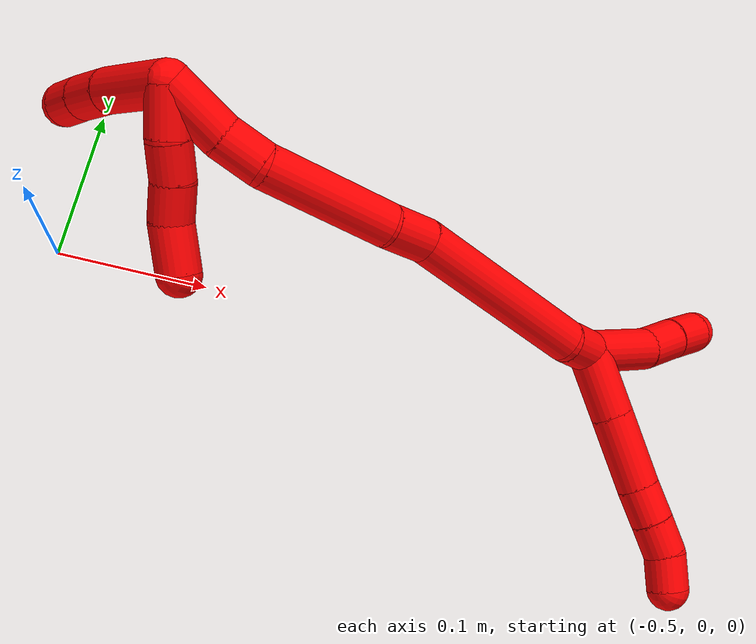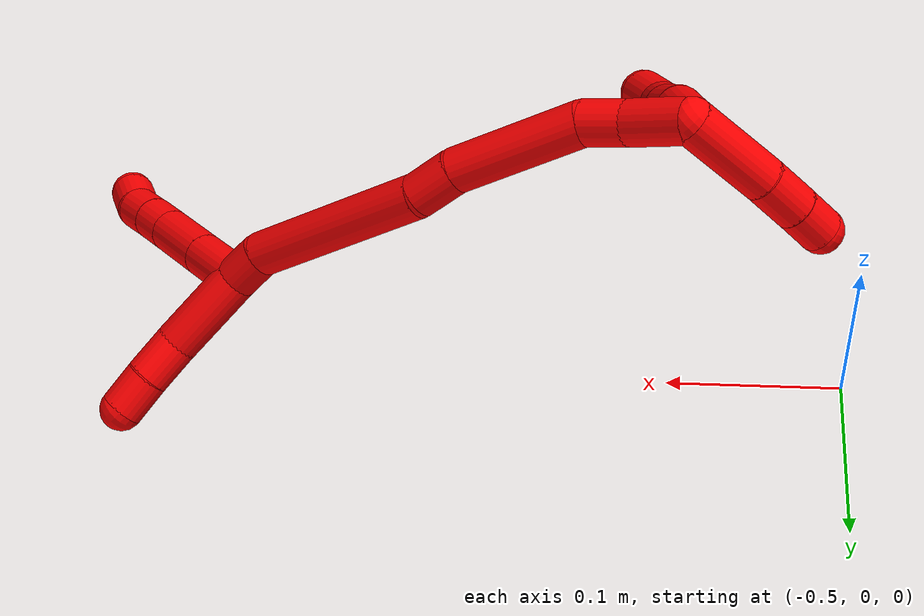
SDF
<sdf version="1.7">
 <world name="default">
  <model name="photoneo_s_sensor">
   <static>1</static>
   <pose>0 0 2 1.57079 1.57079 3.14159</pose>
   <link name="link">
    <inertial><mass>0.1</mass></inertial>
    <sensor name="sensor" type="depth">
     <update_rate>30</update_rate>
     <camera>
      <horizontal_fov>1.22</horizontal_fov>
      <image><width>1920</width><height>1200</height><format>B8G8R8</format></image>
      <clip><near>0.1</near><far>4</far></clip>
      <depth_camera><output>points</output></depth_camera>
     </camera>
     <plugin name="camera_plugin" filename="libgazebo_ros_depth_camera.so">
      <baseline>0.2</baseline>
      <alwaysOn>1</alwaysOn>
      <updateRate>0.0</updateRate>
      <cameraName>camera_ir</cameraName>
      <imageTopicName>/camera/color/image_raw</imageTopicName>
      <cameraInfoTopicName>/camera/color/camera_info</cameraInfoTopicName>
      <depthImageTopicName>/camera/depth/image_raw</depthImageTopicName>
      <depthImageCameraInfoTopicName>/camera/depth/camera_info</depthImageCameraInfoTopicName>
      <pointCloudTopicName>/camera/depth/points</pointCloudTopicName>
      <frameName>fr_optical</frameName>
      <pointCloudCutoff>0.1</pointCloudCutoff>
      <pointCloudCutoffMax>2.0</pointCloudCutoffMax>
      <distortionK1>0</distortionK1>
      <distortionK2>0</distortionK2>
      <distortionK3>0</distortionK3>
      <distortionT1>0</distortionT1>
      <distortionT2>0</distortionT2>
      <CxPrime>0</CxPrime>
      <Cx>0</Cx>
      <Cy>0</Cy>
      <focalLength>0</focalLength>
      <hackBaseline>0</hackBaseline>
     </plugin>
    </sensor>
   </link>
  </model>
  <model name="bin">
   <static>1</static>
   <link name="bottom">
    <collision name="collision-bottom">
     <pose>0 0 -0.01 0 -0 0</pose>
     <geometry><box><size>0.8 0.6 0.02</size></box></geometry>
     <surface>
      <friction><ode><mu>100</mu><mu2>100</mu2></ode></friction>
      <contact><collide_bitmask>65535</collide_bitmask></contact>
     </surface>
    </collision>
   </link>
   <link name="west_wall">
    <collision name="collision-west_wall">
     <pose>-0.41 0 0.1 0 -0 0</pose>
     <geometry><box><size>0.02 0.6 0.2</size></box></geometry>
     <surface>
      <friction><ode><mu>100</mu><mu2>100</mu2></ode></friction>
      <contact><collide_bitmask>65535</collide_bitmask></contact>
     </surface>
    </collision>
   </link>
   <link name="east_wall">
    <collision name="collision-east_wall">
     <pose>0.41 0 0.1 0 -0 0</pose>
     <geometry><box><size>0.02 0.6 0.2</size></box></geometry>
     <surface>
      <friction><ode><mu>100</mu><mu2>100</mu2></ode></friction>
      <contact><collide_bitmask>65535</collide_bitmask></contact>
     </surface>
    </collision>
   </link>
   <link name="south_wall">
    <collision name="collision-south_wall">
     <pose>0 -0.31 0.1 0 -0 0</pose>
     <geometry><box><size>0.8 0.02 0.2</size></box></geometry>
     <surface>
      <friction><ode><mu>100</mu><mu2>100</mu2></ode></friction>
      <contact><collide_bitmask>65535</collide_bitmask></contact>
     </surface>
    </collision>
   </link>
   <link name="north_wall">
    <collision name="collision-north_wall">
     <pose>0 0.31 0.1 0 -0 0</pose>
     <geometry><box><size>0.8 0.02 0.2</size></box></geometry>
     <surface>
      <friction><ode><mu>100</mu><mu2>100</mu2></ode></friction>
      <contact><collide_bitmask>65535</collide_bitmask></contact>
     </surface>
    </collision>
   </link>
  </model>
  <model name="2">
   <static>0</static>
   <link name="2">
    <collision name="collision-cylinder-e_1_2_8">
     <pose>0.009675 -0.014871 -0.009185 2.1241 0.50552 0.867405</pose>
     <geometry><cylinder><radius>0.0125</radius><length>0.039956</length></cylinder></geometry>
     <surface>
      <friction><ode><mu>1.16</mu><mu2>1.16</mu2><slip1>0</slip1><slip2>0</slip2></ode></friction>
      <contact><ode><kp>1e+06</kp><kd>1</kd><max_vel>0</max_vel><min_depth>0.001</min_depth></ode></contact>
     </surface>
    </collision>
    <visual name="visual-cylinder-e_1_2_8">
     <pose>0.009675 -0.014871 -0.009185 2.1241 0.50552 0.867405</pose>
     <geometry><cylinder><radius>0.0125</radius><length>0.039956</length></cylinder></geometry>
     <material><ambient>1 0 0 1</ambient></material>
    </visual>
    <collision name="collision-cylinder-e_2_8_9">
     <pose>0.030264 -0.046567 -0.028665 2.11989 0.505426 0.863497</pose>
     <geometry><cylinder><radius>0.0125</radius><length>0.045086</length></cylinder></geometry>
     <surface>
      <friction><ode><mu>1.16</mu><mu2>1.16</mu2><slip1>0</slip1><slip2>0</slip2></ode></friction>
      <contact><ode><kp>1e+06</kp><kd>1</kd><max_vel>0</max_vel><min_depth>0.001</min_depth></ode></contact>
     </surface>
    </collision>
    <visual name="visual-cylinder-e_2_8_9">
     <pose>0.030264 -0.046567 -0.028665 2.11989 0.505426 0.863497</pose>
     <geometry><cylinder><radius>0.0125</radius><length>0.045086</length></cylinder></geometry>
     <material><ambient>1 0 0 1</ambient></material>
    </visual>
    <collision name="collision-cylinder-e_3_9_10">
     <pose>0.046957 -0.071424 -0.044038 2.13464 0.546286 0.940991</pose>
     <geometry><cylinder><radius>0.0125</radius><length>0.022242</length></cylinder></geometry>
     <surface>
      <friction><ode><mu>1.16</mu><mu2>1.16</mu2><slip1>0</slip1><slip2>0</slip2></ode></friction>
      <contact><ode><kp>1e+06</kp><kd>1</kd><max_vel>0</max_vel><min_depth>0.001</min_depth></ode></contact>
     </surface>
    </collision>
    <visual name="visual-cylinder-e_3_9_10">
     <pose>0.046957 -0.071424 -0.044038 2.13464 0.546286 0.940991</pose>
     <geometry><cylinder><radius>0.0125</radius><length>0.022242</length></cylinder></geometry>
     <material><ambient>1 0 0 1</ambient></material>
    </visual>
    <collision name="collision-cylinder-e_4_10_11">
     <pose>0.057978 -0.08731 -0.054242 2.14893 0.509791 0.896898</pose>
     <geometry><cylinder><radius>0.0125</radius><length>0.021489</length></cylinder></geometry>
     <surface>
      <friction><ode><mu>1.16</mu><mu2>1.16</mu2><slip1>0</slip1><slip2>0</slip2></ode></friction>
      <contact><ode><kp>1e+06</kp><kd>1</kd><max_vel>0</max_vel><min_depth>0.001</min_depth></ode></contact>
     </surface>
    </collision>
    <visual name="visual-cylinder-e_4_10_11">
     <pose>0.057978 -0.08731 -0.054242 2.14893 0.509791 0.896898</pose>
     <geometry><cylinder><radius>0.0125</radius><length>0.021489</length></cylinder></geometry>
     <material><ambient>1 0 0 1</ambient></material>
    </visual>
    <collision name="collision-cylinder-e_5_11_6">
     <pose>0.067435 -0.104579 -0.061863 1.83003 0.408292 0.525729</pose>
     <geometry><cylinder><radius>0.0125</radius><length>0.021226</length></cylinder></geometry>
     <surface>
      <friction><ode><mu>1.16</mu><mu2>1.16</mu2><slip1>0</slip1><slip2>0</slip2></ode></friction>
      <contact><ode><kp>1e+06</kp><kd>1</kd><max_vel>0</max_vel><min_depth>0.001</min_depth></ode></contact>
     </surface>
    </collision>
    <visual name="visual-cylinder-e_5_11_6">
     <pose>0.067435 -0.104579 -0.061863 1.83003 0.408292 0.525729</pose>
     <geometry><cylinder><radius>0.0125</radius><length>0.021226</length></cylinder></geometry>
     <material><ambient>1 0 0 1</ambient></material>
    </visual>
    <collision name="collision-cylinder-e_1_2_12">
     <pose>-0.001113 0.004694 -0.02511 -2.9568 -0.043525 0.461436</pose>
     <geometry><cylinder><radius>0.0125</radius><length>0.051139</length></cylinder></geometry>
     <surface>
      <friction><ode><mu>1.16</mu><mu2>1.16</mu2><slip1>0</slip1><slip2>0</slip2></ode></friction>
      <contact><ode><kp>1e+06</kp><kd>1</kd><max_vel>0</max_vel><min_depth>0.001</min_depth></ode></contact>
     </surface>
    </collision>
    <visual name="visual-cylinder-e_1_2_12">
     <pose>-0.001113 0.004694 -0.02511 -2.9568 -0.043525 0.461436</pose>
     <geometry><cylinder><radius>0.0125</radius><length>0.051139</length></cylinder></geometry>
     <material><ambient>1 0 0 1</ambient></material>
    </visual>
    <collision name="collision-cylinder-e_2_12_13">
     <pose>-0.003024 0.014377 -0.061928 -2.7387 -0.062656 0.304542</pose>
     <geometry><cylinder><radius>0.0125</radius><length>0.025502</length></cylinder></geometry>
     <surface>
      <friction><ode><mu>1.16</mu><mu2>1.16</mu2><slip1>0</slip1><slip2>0</slip2></ode></friction>
      <contact><ode><kp>1e+06</kp><kd>1</kd><max_vel>0</max_vel><min_depth>0.001</min_depth></ode></contact>
     </surface>
    </collision>
    <visual name="visual-cylinder-e_2_12_13">
     <pose>-0.003024 0.014377 -0.061928 -2.7387 -0.062656 0.304542</pose>
     <geometry><cylinder><radius>0.0125</radius><length>0.025502</length></cylinder></geometry>
     <material><ambient>1 0 0 1</ambient></material>
    </visual>
    <collision name="collision-cylinder-e_3_13_5">
     <pose>-0.005059 0.023087 -0.084636 -2.81549 -0.106078 0.624302</pose>
     <geometry><cylinder><radius>0.0125</radius><length>0.023359</length></cylinder></geometry>
     <surface>
      <friction><ode><mu>1.16</mu><mu2>1.16</mu2><slip1>0</slip1><slip2>0</slip2></ode></friction>
      <contact><ode><kp>1e+06</kp><kd>1</kd><max_vel>0</max_vel><min_depth>0.001</min_depth></ode></contact>
     </surface>
    </collision>
    <visual name="visual-cylinder-e_3_13_5">
     <pose>-0.005059 0.023087 -0.084636 -2.81549 -0.106078 0.624302</pose>
     <geometry><cylinder><radius>0.0125</radius><length>0.023359</length></cylinder></geometry>
     <material><ambient>1 0 0 1</ambient></material>
    </visual>
    <collision name="collision-cylinder-e_1_2_14">
     <pose>9.8e-05 0.00142 0.011506 -0.122771 0.008446 -0.000519</pose>
     <geometry><cylinder><radius>0.0125</radius><length>0.023187</length></cylinder></geometry>
     <surface>
      <friction><ode><mu>1.16</mu><mu2>1.16</mu2><slip1>0</slip1><slip2>0</slip2></ode></friction>
      <contact><ode><kp>1e+06</kp><kd>1</kd><max_vel>0</max_vel><min_depth>0.001</min_depth></ode></contact>
     </surface>
    </collision>
    <visual name="visual-cylinder-e_1_2_14">
     <pose>9.8e-05 0.00142 0.011506 -0.122771 0.008446 -0.000519</pose>
     <geometry><cylinder><radius>0.0125</radius><length>0.023187</length></cylinder></geometry>
     <material><ambient>1 0 0 1</ambient></material>
    </visual>
    <collision name="collision-cylinder-e_2_14_15">
     <pose>-0.016163 0.017049 0.074164 -0.270954 -0.298914 0.041046</pose>
     <geometry><cylinder><radius>0.0125</radius><length>0.111105</length></cylinder></geometry>
     <surface>
      <friction><ode><mu>1.16</mu><mu2>1.16</mu2><slip1>0</slip1><slip2>0</slip2></ode></friction>
      <contact><ode><kp>1e+06</kp><kd>1</kd><max_vel>0</max_vel><min_depth>0.001</min_depth></ode></contact>
     </surface>
    </collision>
    <visual name="visual-cylinder-e_2_14_15">
     <pose>-0.016163 0.017049 0.074164 -0.270954 -0.298914 0.041046</pose>
     <geometry><cylinder><radius>0.0125</radius><length>0.111105</length></cylinder></geometry>
     <material><ambient>1 0 0 1</ambient></material>
    </visual>
    <collision name="collision-cylinder-e_3_15_16">
     <pose>-0.034434 0.032108 0.138259 -0.065552 -0.146315 0.004806</pose>
     <geometry><cylinder><radius>0.0125</radius><length>0.02622</length></cylinder></geometry>
     <surface>
      <friction><ode><mu>1.16</mu><mu2>1.16</mu2><slip1>0</slip1><slip2>0</slip2></ode></friction>
      <contact><ode><kp>1e+06</kp><kd>1</kd><max_vel>0</max_vel><min_depth>0.001</min_depth></ode></contact>
     </surface>
    </collision>
    <visual name="visual-cylinder-e_3_15_16">
     <pose>-0.034434 0.032108 0.138259 -0.065552 -0.146315 0.004806</pose>
     <geometry><cylinder><radius>0.0125</radius><length>0.02622</length></cylinder></geometry>
     <material><ambient>1 0 0 1</ambient></material>
    </visual>
    <collision name="collision-cylinder-e_4_16_17">
     <pose>-0.049467 0.037042 0.186949 -0.113756 -0.349679 0.020115</pose>
     <geometry><cylinder><radius>0.0125</radius><length>0.076598</length></cylinder></geometry>
     <surface>
      <friction><ode><mu>1.16</mu><mu2>1.16</mu2><slip1>0</slip1><slip2>0</slip2></ode></friction>
      <contact><ode><kp>1e+06</kp><kd>1</kd><max_vel>0</max_vel><min_depth>0.001</min_depth></ode></contact>
     </surface>
    </collision>
    <visual name="visual-cylinder-e_4_16_17">
     <pose>-0.049467 0.037042 0.186949 -0.113756 -0.349679 0.020115</pose>
     <geometry><cylinder><radius>0.0125</radius><length>0.076598</length></cylinder></geometry>
     <material><ambient>1 0 0 1</ambient></material>
    </visual>
    <collision name="collision-cylinder-e_5_17_18">
     <pose>-0.070041 0.044304 0.23236 -0.317794 -0.632403 0.104764</pose>
     <geometry><cylinder><radius>0.0125</radius><length>0.025219</length></cylinder></geometry>
     <surface>
      <friction><ode><mu>1.16</mu><mu2>1.16</mu2><slip1>0</slip1><slip2>0</slip2></ode></friction>
      <contact><ode><kp>1e+06</kp><kd>1</kd><max_vel>0</max_vel><min_depth>0.001</min_depth></ode></contact>
     </surface>
    </collision>
    <visual name="visual-cylinder-e_5_17_18">
     <pose>-0.070041 0.044304 0.23236 -0.317794 -0.632403 0.104764</pose>
     <geometry><cylinder><radius>0.0125</radius><length>0.025219</length></cylinder></geometry>
     <material><ambient>1 0 0 1</ambient></material>
    </visual>
    <collision name="collision-cylinder-e_6_18_1">
     <pose>-0.086555 0.055364 0.256532 -0.497558 -0.50182 0.130044</pose>
     <geometry><cylinder><radius>0.0125</radius><length>0.03767</length></cylinder></geometry>
     <surface>
      <friction><ode><mu>1.16</mu><mu2>1.16</mu2><slip1>0</slip1><slip2>0</slip2></ode></friction>
      <contact><ode><kp>1e+06</kp><kd>1</kd><max_vel>0</max_vel><min_depth>0.001</min_depth></ode></contact>
     </surface>
    </collision>
    <visual name="visual-cylinder-e_6_18_1">
     <pose>-0.086555 0.055364 0.256532 -0.497558 -0.50182 0.130044</pose>
     <geometry><cylinder><radius>0.0125</radius><length>0.03767</length></cylinder></geometry>
     <material><ambient>1 0 0 1</ambient></material>
    </visual>
    <collision name="collision-cylinder-e_1_1_19">
     <pose>-0.120625 0.054726 0.271149 1.55835 -1.24247 -1.23072</pose>
     <geometry><cylinder><radius>0.0125</radius><length>0.052844</length></cylinder></geometry>
     <surface>
      <friction><ode><mu>1.16</mu><mu2>1.16</mu2><slip1>0</slip1><slip2>0</slip2></ode></friction>
      <contact><ode><kp>1e+06</kp><kd>1</kd><max_vel>0</max_vel><min_depth>0.001</min_depth></ode></contact>
     </surface>
    </collision>
    <visual name="visual-cylinder-e_1_1_19">
     <pose>-0.120625 0.054726 0.271149 1.55835 -1.24247 -1.23072</pose>
     <geometry><cylinder><radius>0.0125</radius><length>0.052844</length></cylinder></geometry>
     <material><ambient>1 0 0 1</ambient></material>
    </visual>
    <collision name="collision-cylinder-e_2_19_20">
     <pose>-0.157645 0.041325 0.270567 1.71093 -1.18129 -1.31449</pose>
     <geometry><cylinder><radius>0.0125</radius><length>0.025963</length></cylinder></geometry>
     <surface>
      <friction><ode><mu>1.16</mu><mu2>1.16</mu2><slip1>0</slip1><slip2>0</slip2></ode></friction>
      <contact><ode><kp>1e+06</kp><kd>1</kd><max_vel>0</max_vel><min_depth>0.001</min_depth></ode></contact>
     </surface>
    </collision>
    <visual name="visual-cylinder-e_2_19_20">
     <pose>-0.157645 0.041325 0.270567 1.71093 -1.18129 -1.31449</pose>
     <geometry><cylinder><radius>0.0125</radius><length>0.025963</length></cylinder></geometry>
     <material><ambient>1 0 0 1</ambient></material>
    </visual>
    <collision name="collision-cylinder-e_3_20_4">
     <pose>-0.179314 0.032171 0.269035 1.76561 -1.14719 -1.33227</pose>
     <geometry><cylinder><radius>0.0125</radius><length>0.021193</length></cylinder></geometry>
     <surface>
      <friction><ode><mu>1.16</mu><mu2>1.16</mu2><slip1>0</slip1><slip2>0</slip2></ode></friction>
      <contact><ode><kp>1e+06</kp><kd>1</kd><max_vel>0</max_vel><min_depth>0.001</min_depth></ode></contact>
     </surface>
    </collision>
    <visual name="visual-cylinder-e_3_20_4">
     <pose>-0.179314 0.032171 0.269035 1.76561 -1.14719 -1.33227</pose>
     <geometry><cylinder><radius>0.0125</radius><length>0.021193</length></cylinder></geometry>
     <material><ambient>1 0 0 1</ambient></material>
    </visual>
    <collision name="collision-cylinder-e_1_1_21">
     <pose>-0.093415 0.04988 0.266824 1.87661 0.155644 0.211989</pose>
     <geometry><cylinder><radius>0.0125</radius><length>0.028373</length></cylinder></geometry>
     <surface>
      <friction><ode><mu>1.16</mu><mu2>1.16</mu2><slip1>0</slip1><slip2>0</slip2></ode></friction>
      <contact><ode><kp>1e+06</kp><kd>1</kd><max_vel>0</max_vel><min_depth>0.001</min_depth></ode></contact>
     </surface>
    </collision>
    <visual name="visual-cylinder-e_1_1_21">
     <pose>-0.093415 0.04988 0.266824 1.87661 0.155644 0.211989</pose>
     <geometry><cylinder><radius>0.0125</radius><length>0.028373</length></cylinder></geometry>
     <material><ambient>1 0 0 1</ambient></material>
    </visual>
    <collision name="collision-cylinder-e_2_21_22">
     <pose>-0.090389 0.026863 0.257575 2.05113 0.075871 0.12498</pose>
     <geometry><cylinder><radius>0.0125</radius><length>0.021832</length></cylinder></geometry>
     <surface>
      <friction><ode><mu>1.16</mu><mu2>1.16</mu2><slip1>0</slip1><slip2>0</slip2></ode></friction>
      <contact><ode><kp>1e+06</kp><kd>1</kd><max_vel>0</max_vel><min_depth>0.001</min_depth></ode></contact>
     </surface>
    </collision>
    <visual name="visual-cylinder-e_2_21_22">
     <pose>-0.090389 0.026863 0.257575 2.05113 0.075871 0.12498</pose>
     <geometry><cylinder><radius>0.0125</radius><length>0.021832</length></cylinder></geometry>
     <material><ambient>1 0 0 1</ambient></material>
    </visual>
    <collision name="collision-cylinder-e_3_22_23">
     <pose>-0.089585 0.006716 0.248879 1.90694 -0.002105 -0.002966</pose>
     <geometry><cylinder><radius>0.0125</radius><length>0.022232</length></cylinder></geometry>
     <surface>
      <friction><ode><mu>1.16</mu><mu2>1.16</mu2><slip1>0</slip1><slip2>0</slip2></ode></friction>
      <contact><ode><kp>1e+06</kp><kd>1</kd><max_vel>0</max_vel><min_depth>0.001</min_depth></ode></contact>
     </surface>
    </collision>
    <visual name="visual-cylinder-e_3_22_23">
     <pose>-0.089585 0.006716 0.248879 1.90694 -0.002105 -0.002966</pose>
     <geometry><cylinder><radius>0.0125</radius><length>0.022232</length></cylinder></geometry>
     <material><ambient>1 0 0 1</ambient></material>
    </visual>
    <collision name="collision-cylinder-e_4_23_3">
     <pose>-0.085622 -0.015922 0.240059 1.97207 0.293466 0.439312</pose>
     <geometry><cylinder><radius>0.0125</radius><length>0.027564</length></cylinder></geometry>
     <surface>
      <friction><ode><mu>1.16</mu><mu2>1.16</mu2><slip1>0</slip1><slip2>0</slip2></ode></friction>
      <contact><ode><kp>1e+06</kp><kd>1</kd><max_vel>0</max_vel><min_depth>0.001</min_depth></ode></contact>
     </surface>
    </collision>
    <visual name="visual-cylinder-e_4_23_3">
     <pose>-0.085622 -0.015922 0.240059 1.97207 0.293466 0.439312</pose>
     <geometry><cylinder><radius>0.0125</radius><length>0.027564</length></cylinder></geometry>
     <material><ambient>1 0 0 1</ambient></material>
    </visual>
    <collision name="collision-sphere-3">
     <pose>-0.081635 -0.028067 0.234906 0 -0 0</pose>
     <geometry><sphere><radius>0.0125</radius></sphere></geometry>
     <surface>
      <friction><ode><mu>1.16</mu><mu2>1.16</mu2><slip1>0</slip1><slip2>0</slip2></ode></friction>
      <contact><ode><kp>1e+06</kp><kd>1</kd><max_vel>0</max_vel><min_depth>0.001</min_depth></ode></contact>
     </surface>
    </collision>
    <visual name="visual-sphere-3">
     <pose>-0.081635 -0.028067 0.234906 0 -0 0</pose>
     <geometry><sphere><radius>0.0125</radius></sphere></geometry>
     <material><ambient>1 0 0 1</ambient></material>
    </visual>
    <collision name="collision-sphere-23">
     <pose>-0.089608 -0.003778 0.245212 0 -0 0</pose>
     <geometry><sphere><radius>0.0125</radius></sphere></geometry>
     <surface>
      <friction><ode><mu>1.16</mu><mu2>1.16</mu2><slip1>0</slip1><slip2>0</slip2></ode></friction>
      <contact><ode><kp>1e+06</kp><kd>1</kd><max_vel>0</max_vel><min_depth>0.001</min_depth></ode></contact>
     </surface>
    </collision>
    <visual name="visual-sphere-23">
     <pose>-0.089608 -0.003778 0.245212 0 -0 0</pose>
     <geometry><sphere><radius>0.0125</radius></sphere></geometry>
     <material><ambient>1 0 0 1</ambient></material>
    </visual>
    <collision name="collision-sphere-22">
     <pose>-0.089562 0.01721 0.252545 0 -0 0</pose>
     <geometry><sphere><radius>0.0125</radius></sphere></geometry>
     <surface>
      <friction><ode><mu>1.16</mu><mu2>1.16</mu2><slip1>0</slip1><slip2>0</slip2></ode></friction>
      <contact><ode><kp>1e+06</kp><kd>1</kd><max_vel>0</max_vel><min_depth>0.001</min_depth></ode></contact>
     </surface>
    </collision>
    <visual name="visual-sphere-22">
     <pose>-0.089562 0.01721 0.252545 0 -0 0</pose>
     <geometry><sphere><radius>0.0125</radius></sphere></geometry>
     <material><ambient>1 0 0 1</ambient></material>
    </visual>
    <collision name="collision-sphere-21">
     <pose>-0.091216 0.036515 0.262604 0 -0 0</pose>
     <geometry><sphere><radius>0.0125</radius></sphere></geometry>
     <surface>
      <friction><ode><mu>1.16</mu><mu2>1.16</mu2><slip1>0</slip1><slip2>0</slip2></ode></friction>
      <contact><ode><kp>1e+06</kp><kd>1</kd><max_vel>0</max_vel><min_depth>0.001</min_depth></ode></contact>
     </surface>
    </collision>
    <visual name="visual-sphere-21">
     <pose>-0.091216 0.036515 0.262604 0 -0 0</pose>
     <geometry><sphere><radius>0.0125</radius></sphere></geometry>
     <material><ambient>1 0 0 1</ambient></material>
    </visual>
    <collision name="collision-sphere-4">
     <pose>-0.188974 0.027897 0.268192 0 -0 0</pose>
     <geometry><sphere><radius>0.0125</radius></sphere></geometry>
     <surface>
      <friction><ode><mu>1.16</mu><mu2>1.16</mu2><slip1>0</slip1><slip2>0</slip2></ode></friction>
      <contact><ode><kp>1e+06</kp><kd>1</kd><max_vel>0</max_vel><min_depth>0.001</min_depth></ode></contact>
     </surface>
    </collision>
    <visual name="visual-sphere-4">
     <pose>-0.188974 0.027897 0.268192 0 -0 0</pose>
     <geometry><sphere><radius>0.0125</radius></sphere></geometry>
     <material><ambient>1 0 0 1</ambient></material>
    </visual>
    <collision name="collision-sphere-20">
     <pose>-0.169655 0.036444 0.269878 0 -0 0</pose>
     <geometry><sphere><radius>0.0125</radius></sphere></geometry>
     <surface>
      <friction><ode><mu>1.16</mu><mu2>1.16</mu2><slip1>0</slip1><slip2>0</slip2></ode></friction>
      <contact><ode><kp>1e+06</kp><kd>1</kd><max_vel>0</max_vel><min_depth>0.001</min_depth></ode></contact>
     </surface>
    </collision>
    <visual name="visual-sphere-20">
     <pose>-0.169655 0.036444 0.269878 0 -0 0</pose>
     <geometry><sphere><radius>0.0125</radius></sphere></geometry>
     <material><ambient>1 0 0 1</ambient></material>
    </visual>
    <collision name="collision-sphere-6">
     <pose>0.071649 -0.113995 -0.06436 0 -0 0</pose>
     <geometry><sphere><radius>0.0125</radius></sphere></geometry>
     <surface>
      <friction><ode><mu>1.16</mu><mu2>1.16</mu2><slip1>0</slip1><slip2>0</slip2></ode></friction>
      <contact><ode><kp>1e+06</kp><kd>1</kd><max_vel>0</max_vel><min_depth>0.001</min_depth></ode></contact>
     </surface>
    </collision>
    <visual name="visual-sphere-6">
     <pose>0.071649 -0.113995 -0.06436 0 -0 0</pose>
     <geometry><sphere><radius>0.0125</radius></sphere></geometry>
     <material><ambient>1 0 0 1</ambient></material>
    </visual>
    <collision name="collision-sphere-11">
     <pose>0.063221 -0.095164 -0.059367 0 -0 0</pose>
     <geometry><sphere><radius>0.0125</radius></sphere></geometry>
     <surface>
      <friction><ode><mu>1.16</mu><mu2>1.16</mu2><slip1>0</slip1><slip2>0</slip2></ode></friction>
      <contact><ode><kp>1e+06</kp><kd>1</kd><max_vel>0</max_vel><min_depth>0.001</min_depth></ode></contact>
     </surface>
    </collision>
    <visual name="visual-sphere-11">
     <pose>0.063221 -0.095164 -0.059367 0 -0 0</pose>
     <geometry><sphere><radius>0.0125</radius></sphere></geometry>
     <material><ambient>1 0 0 1</ambient></material>
    </visual>
    <collision name="collision-sphere-10">
     <pose>0.052734 -0.079456 -0.049117 0 -0 0</pose>
     <geometry><sphere><radius>0.0125</radius></sphere></geometry>
     <surface>
      <friction><ode><mu>1.16</mu><mu2>1.16</mu2><slip1>0</slip1><slip2>0</slip2></ode></friction>
      <contact><ode><kp>1e+06</kp><kd>1</kd><max_vel>0</max_vel><min_depth>0.001</min_depth></ode></contact>
     </surface>
    </collision>
    <visual name="visual-sphere-10">
     <pose>0.052734 -0.079456 -0.049117 0 -0 0</pose>
     <geometry><sphere><radius>0.0125</radius></sphere></geometry>
     <material><ambient>1 0 0 1</ambient></material>
    </visual>
    <collision name="collision-sphere-9">
     <pose>0.041179 -0.063392 -0.03896 0 -0 0</pose>
     <geometry><sphere><radius>0.0125</radius></sphere></geometry>
     <surface>
      <friction><ode><mu>1.16</mu><mu2>1.16</mu2><slip1>0</slip1><slip2>0</slip2></ode></friction>
      <contact><ode><kp>1e+06</kp><kd>1</kd><max_vel>0</max_vel><min_depth>0.001</min_depth></ode></contact>
     </surface>
    </collision>
    <visual name="visual-sphere-9">
     <pose>0.041179 -0.063392 -0.03896 0 -0 0</pose>
     <geometry><sphere><radius>0.0125</radius></sphere></geometry>
     <material><ambient>1 0 0 1</ambient></material>
    </visual>
    <collision name="collision-sphere-2">
     <geometry><sphere><radius>0.0125</radius></sphere></geometry>
     <surface>
      <friction><ode><mu>1.16</mu><mu2>1.16</mu2><slip1>0</slip1><slip2>0</slip2></ode></friction>
      <contact><ode><kp>1e+06</kp><kd>1</kd><max_vel>0</max_vel><min_depth>0.001</min_depth></ode></contact>
     </surface>
    </collision>
    <visual name="visual-sphere-2">
     <geometry><sphere><radius>0.0125</radius></sphere></geometry>
     <material><ambient>1 0 0 1</ambient></material>
    </visual>
    <collision name="collision-sphere-19">
     <pose>-0.145636 0.046206 0.271255 0 -0 0</pose>
     <geometry><sphere><radius>0.0125</radius></sphere></geometry>
     <surface>
      <friction><ode><mu>1.16</mu><mu2>1.16</mu2><slip1>0</slip1><slip2>0</slip2></ode></friction>
      <contact><ode><kp>1e+06</kp><kd>1</kd><max_vel>0</max_vel><min_depth>0.001</min_depth></ode></contact>
     </surface>
    </collision>
    <visual name="visual-sphere-19">
     <pose>-0.145636 0.046206 0.271255 0 -0 0</pose>
     <geometry><sphere><radius>0.0125</radius></sphere></geometry>
     <material><ambient>1 0 0 1</ambient></material>
    </visual>
    <collision name="collision-sphere-8">
     <pose>0.019349 -0.029743 -0.018371 0 -0 0</pose>
     <geometry><sphere><radius>0.0125</radius></sphere></geometry>
     <surface>
      <friction><ode><mu>1.16</mu><mu2>1.16</mu2><slip1>0</slip1><slip2>0</slip2></ode></friction>
      <contact><ode><kp>1e+06</kp><kd>1</kd><max_vel>0</max_vel><min_depth>0.001</min_depth></ode></contact>
     </surface>
    </collision>
    <visual name="visual-sphere-8">
     <pose>0.019349 -0.029743 -0.018371 0 -0 0</pose>
     <geometry><sphere><radius>0.0125</radius></sphere></geometry>
     <material><ambient>1 0 0 1</ambient></material>
    </visual>
    <collision name="collision-sphere-12">
     <pose>-0.002225 0.009387 -0.050221 0 -0 0</pose>
     <geometry><sphere><radius>0.0125</radius></sphere></geometry>
     <surface>
      <friction><ode><mu>1.16</mu><mu2>1.16</mu2><slip1>0</slip1><slip2>0</slip2></ode></friction>
      <contact><ode><kp>1e+06</kp><kd>1</kd><max_vel>0</max_vel><min_depth>0.001</min_depth></ode></contact>
     </surface>
    </collision>
    <visual name="visual-sphere-12">
     <pose>-0.002225 0.009387 -0.050221 0 -0 0</pose>
     <geometry><sphere><radius>0.0125</radius></sphere></geometry>
     <material><ambient>1 0 0 1</ambient></material>
    </visual>
    <collision name="collision-sphere-13">
     <pose>-0.003822 0.019366 -0.073635 0 -0 0</pose>
     <geometry><sphere><radius>0.0125</radius></sphere></geometry>
     <surface>
      <friction><ode><mu>1.16</mu><mu2>1.16</mu2><slip1>0</slip1><slip2>0</slip2></ode></friction>
      <contact><ode><kp>1e+06</kp><kd>1</kd><max_vel>0</max_vel><min_depth>0.001</min_depth></ode></contact>
     </surface>
    </collision>
    <visual name="visual-sphere-13">
     <pose>-0.003822 0.019366 -0.073635 0 -0 0</pose>
     <geometry><sphere><radius>0.0125</radius></sphere></geometry>
     <material><ambient>1 0 0 1</ambient></material>
    </visual>
    <collision name="collision-sphere-5">
     <pose>-0.006295 0.026808 -0.095638 0 -0 0</pose>
     <geometry><sphere><radius>0.0125</radius></sphere></geometry>
     <surface>
      <friction><ode><mu>1.16</mu><mu2>1.16</mu2><slip1>0</slip1><slip2>0</slip2></ode></friction>
      <contact><ode><kp>1e+06</kp><kd>1</kd><max_vel>0</max_vel><min_depth>0.001</min_depth></ode></contact>
     </surface>
    </collision>
    <visual name="visual-sphere-5">
     <pose>-0.006295 0.026808 -0.095638 0 -0 0</pose>
     <geometry><sphere><radius>0.0125</radius></sphere></geometry>
     <material><ambient>1 0 0 1</ambient></material>
    </visual>
    <collision name="collision-sphere-14">
     <pose>0.000196 0.002839 0.023012 0 -0 0</pose>
     <geometry><sphere><radius>0.0125</radius></sphere></geometry>
     <surface>
      <friction><ode><mu>1.16</mu><mu2>1.16</mu2><slip1>0</slip1><slip2>0</slip2></ode></friction>
      <contact><ode><kp>1e+06</kp><kd>1</kd><max_vel>0</max_vel><min_depth>0.001</min_depth></ode></contact>
     </surface>
    </collision>
    <visual name="visual-sphere-14">
     <pose>0.000196 0.002839 0.023012 0 -0 0</pose>
     <geometry><sphere><radius>0.0125</radius></sphere></geometry>
     <material><ambient>1 0 0 1</ambient></material>
    </visual>
    <collision name="collision-sphere-15">
     <pose>-0.032523 0.031258 0.125317 0 -0 0</pose>
     <geometry><sphere><radius>0.0125</radius></sphere></geometry>
     <surface>
      <friction><ode><mu>1.16</mu><mu2>1.16</mu2><slip1>0</slip1><slip2>0</slip2></ode></friction>
      <contact><ode><kp>1e+06</kp><kd>1</kd><max_vel>0</max_vel><min_depth>0.001</min_depth></ode></contact>
     </surface>
    </collision>
    <visual name="visual-sphere-15">
     <pose>-0.032523 0.031258 0.125317 0 -0 0</pose>
     <geometry><sphere><radius>0.0125</radius></sphere></geometry>
     <material><ambient>1 0 0 1</ambient></material>
    </visual>
    <collision name="collision-sphere-16">
     <pose>-0.036345 0.032957 0.1512 0 -0 0</pose>
     <geometry><sphere><radius>0.0125</radius></sphere></geometry>
     <surface>
      <friction><ode><mu>1.16</mu><mu2>1.16</mu2><slip1>0</slip1><slip2>0</slip2></ode></friction>
      <contact><ode><kp>1e+06</kp><kd>1</kd><max_vel>0</max_vel><min_depth>0.001</min_depth></ode></contact>
     </surface>
    </collision>
    <visual name="visual-sphere-16">
     <pose>-0.036345 0.032957 0.1512 0 -0 0</pose>
     <geometry><sphere><radius>0.0125</radius></sphere></geometry>
     <material><ambient>1 0 0 1</ambient></material>
    </visual>
    <collision name="collision-sphere-17">
     <pose>-0.062588 0.041126 0.222698 0 -0 0</pose>
     <geometry><sphere><radius>0.0125</radius></sphere></geometry>
     <surface>
      <friction><ode><mu>1.16</mu><mu2>1.16</mu2><slip1>0</slip1><slip2>0</slip2></ode></friction>
      <contact><ode><kp>1e+06</kp><kd>1</kd><max_vel>0</max_vel><min_depth>0.001</min_depth></ode></contact>
     </surface>
    </collision>
    <visual name="visual-sphere-17">
     <pose>-0.062588 0.041126 0.222698 0 -0 0</pose>
     <geometry><sphere><radius>0.0125</radius></sphere></geometry>
     <material><ambient>1 0 0 1</ambient></material>
    </visual>
    <collision name="collision-sphere-18">
     <pose>-0.077495 0.047482 0.242022 0 -0 0</pose>
     <geometry><sphere><radius>0.0125</radius></sphere></geometry>
     <surface>
      <friction><ode><mu>1.16</mu><mu2>1.16</mu2><slip1>0</slip1><slip2>0</slip2></ode></friction>
      <contact><ode><kp>1e+06</kp><kd>1</kd><max_vel>0</max_vel><min_depth>0.001</min_depth></ode></contact>
     </surface>
    </collision>
    <visual name="visual-sphere-18">
     <pose>-0.077495 0.047482 0.242022 0 -0 0</pose>
     <geometry><sphere><radius>0.0125</radius></sphere></geometry>
     <material><ambient>1 0 0 1</ambient></material>
    </visual>
    <collision name="collision-sphere-1">
     <pose>-0.095615 0.063245 0.271043 0 -0 0</pose>
     <geometry><sphere><radius>0.0125</radius></sphere></geometry>
     <surface>
      <friction><ode><mu>1.16</mu><mu2>1.16</mu2><slip1>0</slip1><slip2>0</slip2></ode></friction>
      <contact><ode><kp>1e+06</kp><kd>1</kd><max_vel>0</max_vel><min_depth>0.001</min_depth></ode></contact>
     </surface>
    </collision>
    <visual name="visual-sphere-1">
     <pose>-0.095615 0.063245 0.271043 0 -0 0</pose>
     <geometry><sphere><radius>0.0125</radius></sphere></geometry>
     <material><ambient>1 0 0 1</ambient></material>
    </visual>
    <inertial>
     <pose>-0.03938 0.010581 0.112555 0 -0 0</pose>
     <mass>0.75</mass>
     <inertia>
      <ixx>0.000217</ixx>
      <ixy>0</ixy>
      <ixz>0</ixz>
      <iyy>0.000177</iyy>
      <iyz>0</iyz>
      <izz>5.4e-05</izz>
     </inertia>
    </inertial>
   </link>
   <pose>-0.15711 -0.0097 0.069265 0.580375 -0.582043 -0.519792</pose>
  </model>
 </world>
</sdf>
